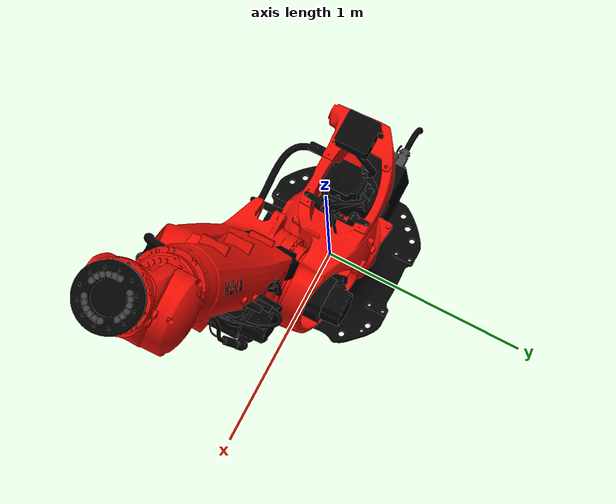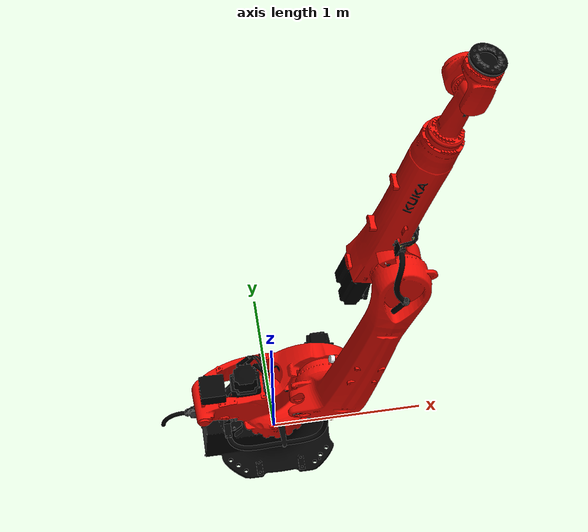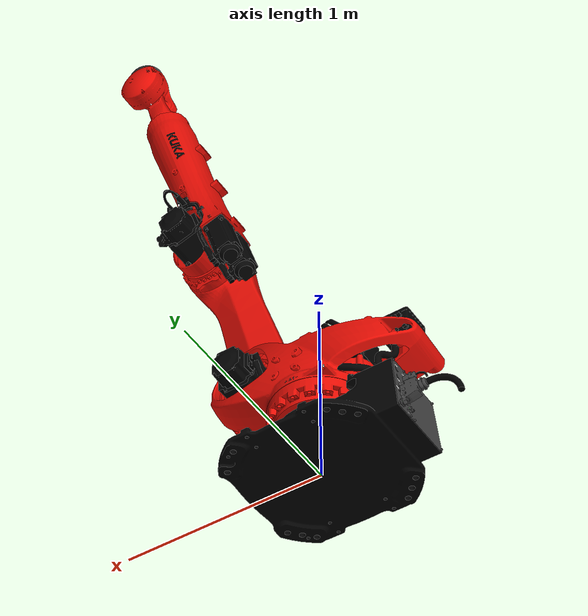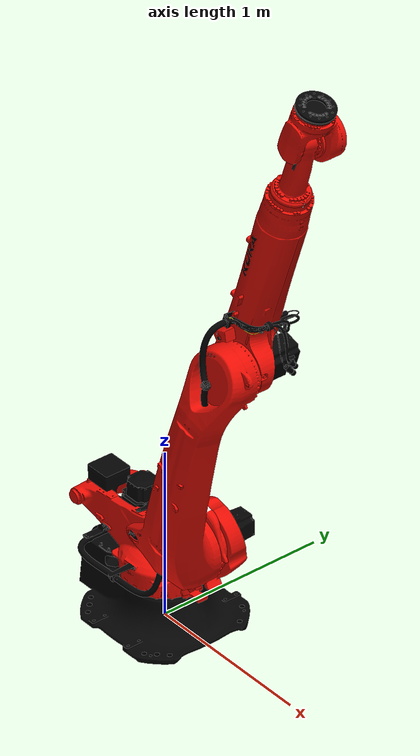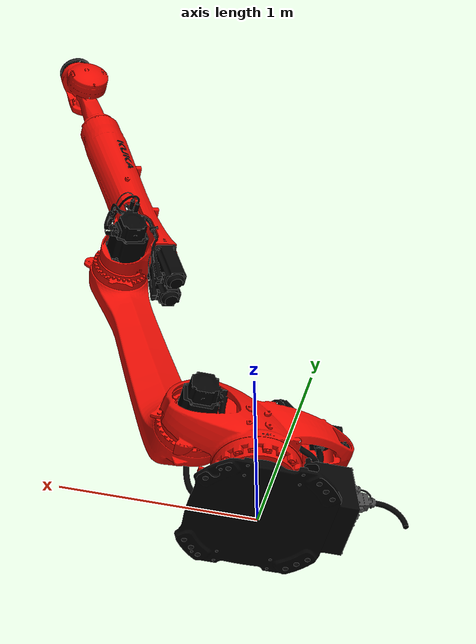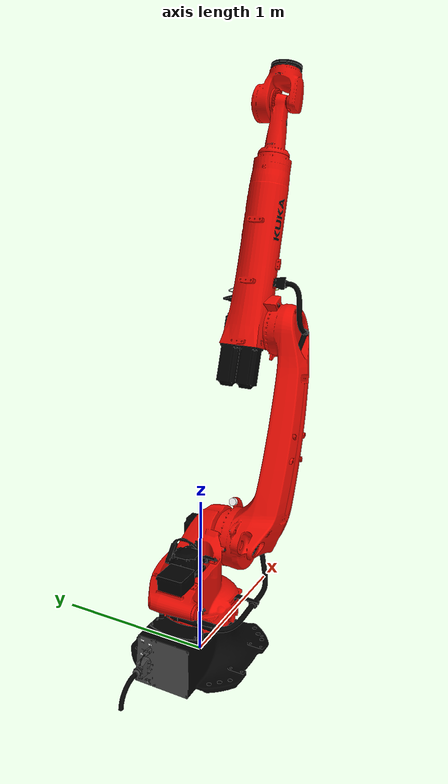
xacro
<?xml version="1.0" encoding="UTF-8"?>
<robot xmlns:xacro="http://www.ros.org/wiki/xacro" name="kr210_r3100_2">
  <!-- Import urdf files  -->
  <xacro:include filename="$(find kuka_quantec_support)/urdf/kr210_r3100_2_macro.xacro"/>
  <xacro:include filename="$(find kuka_quantec_support)/urdf/kr_quantec_ros2_control_macro.xacro"/>
  <!-- Basic arguments  -->
  <xacro:arg name="prefix" default=""/>
  <xacro:arg name="x" default="0"/>
  <xacro:arg name="y" default="0"/>
  <xacro:arg name="z" default="0"/>
  <xacro:arg name="roll" default="0"/>
  <xacro:arg name="pitch" default="0"/>
  <xacro:arg name="yaw" default="0"/>
  <!-- kroshu-specific arguments -->
  <xacro:arg name="driver_version" default="rsi_only"/>
  <xacro:arg name="mode" default="hardware"/>
  <xacro:arg name="gpio_config" default=""/>
  <xacro:arg name="roundtrip_time" default="0"/>
  <xacro:arg name="client_ip" default="0.0.0.0"/>
  <xacro:arg name="client_port" default="59152"/>
  <xacro:arg name="mxa_client_port" default="1337"/>
  <xacro:arg name="controller_ip" default="0.0.0.0"/>
  <xacro:arg name="verify_robot_model" default="true"/>
  <xacro:arg name="rsi_xml_config_file" default=""/>
  <xacro:kuka_quantec_ros2_control name="$(arg prefix)kr210_r3100_2" driver_version="$(arg driver_version)" client_ip="$(arg client_ip)" client_port="$(arg client_port)" mxa_client_port="$(arg mxa_client_port)" controller_ip="$(arg controller_ip)" prefix="$(arg prefix)" mode="$(arg mode)" gpio_config="$(arg gpio_config)" roundtrip_time="$(arg roundtrip_time)" verify_robot_model="$(arg verify_robot_model)" rsi_xml_config_file="$(arg rsi_xml_config_file)">
    <ext_axes_ros2_control_joints/>
  </xacro:kuka_quantec_ros2_control>
  <!-- world link -->
  <link name="world"/>
  <!-- robot links, joints -->
  <xacro:kuka_kr210_r3100_2_robot prefix="$(arg prefix)" package_name="kuka_quantec_support"/>
  <!-- default world - base_link joint -->
  <joint name="$(arg prefix)world-base_link" type="fixed">
    <parent link="world"/>
    <child link="$(arg prefix)base_link"/>
    <origin xyz="$(arg x) $(arg y) $(arg z)" rpy="$(arg roll) $(arg pitch) $(arg yaw)"/>
  </joint>
</robot>

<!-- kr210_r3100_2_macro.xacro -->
<robot xmlns:xacro="http://www.ros.org/wiki/xacro" name="kr210_r3100_2">
  <xacro:macro name="kuka_kr210_r3100_2_robot" params="prefix package_name">
    <link name="${prefix}base"/>
    <link name="${prefix}base_link">
      <collision>
        <geometry>
          <mesh filename="package://${package_name}/meshes/kr210_r3100_2/collision/base_link.stl"/>
        </geometry>
        <origin rpy="0.0 0.0 0.0" xyz="0.0 0.0 0.0"/>
      </collision>
      <inertial>
        <inertia ixx="12.8308803908269" ixy="0.0" ixz="0.0" iyy="9.01196989503174" iyz="0.0" izz="14.2958860155811"/>
        <mass value="2.2596E2"/>
        <origin rpy="-0.050860131411839364 -0.0019883389878402632 1.5231487443995257" xyz="-0.0594893335103558 0.0021559506107275703 0.20325069304301702"/>
      </inertial>
      <visual>
        <geometry>
          <mesh filename="package://${package_name}/meshes/kr210_r3100_2/visual/base_link.dae"/>
        </geometry>
        <origin rpy="0.0 0.0 0.0" xyz="0.0 0.0 0.0"/>
      </visual>
    </link>
    <link name="${prefix}flange"/>
    <link name="${prefix}link_1">
      <collision>
        <geometry>
          <mesh filename="package://${package_name}/meshes/kr210_r3100_2/collision/link_1.stl"/>
        </geometry>
        <origin rpy="-3.141592653589793 0.0 -0.0" xyz="0.0 -3.742520618194312e-17 0.30560000000000004"/>
      </collision>
      <inertial>
        <inertia ixx="31.7863155713632" ixy="0.0" ixz="0.0" iyy="13.3310318632879" iyz="0.0" izz="34.1806723147254"/>
        <mass value="367.37"/>
        <origin rpy="-0.351197441830708 -1.2748494702774995 -1.4514723788195059" xyz="0.0282630046002668 0.011134569507580901 -0.235336739526907"/>
      </inertial>
      <visual>
        <geometry>
          <mesh filename="package://${package_name}/meshes/kr210_r3100_2/visual/link_1.dae"/>
        </geometry>
        <origin rpy="-3.141592653589793 0.0 -0.0" xyz="0.0 -3.742520618194312e-17 0.30560000000000004"/>
      </visual>
    </link>
    <link name="${prefix}link_2">
      <collision>
        <geometry>
          <mesh filename="package://${package_name}/meshes/kr210_r3100_2/collision/link_2.stl"/>
        </geometry>
        <origin rpy="1.5707963267948968 -0.0 1.5707963267948966" xyz="-0.645 -0.32999999999999996 0.07200000000000008"/>
      </collision>
      <inertial>
        <inertia ixx="6.11156632969732" ixy="0.0" ixz="0.0" iyy="82.7509302435823" iyz="0.0" izz="83.2585967164398"/>
        <mass value="250.56"/>
        <origin rpy="0.5376277345260776 0.09067448308201613 0.007191247120022789" xyz="0.577871168582376 -0.0013846982758620701 -0.125571679438059"/>
      </inertial>
      <visual>
        <geometry>
          <mesh filename="package://${package_name}/meshes/kr210_r3100_2/visual/link_2.dae"/>
        </geometry>
        <origin rpy="1.5707963267948968 -0.0 1.5707963267948966" xyz="-0.645 -0.32999999999999996 0.07200000000000008"/>
      </visual>
    </link>
    <link name="${prefix}link_3">
      <collision>
        <geometry>
          <mesh filename="package://${package_name}/meshes/kr210_r3100_2/collision/link_3.stl"/>
        </geometry>
        <origin rpy="1.5707963267948968 -0.0 -0.0" xyz="-0.33000000000000007 1.995 0.17500000000000007"/>
      </collision>
      <inertial>
        <inertia ixx="3.682159161562" ixy="0.0" ixz="0.0" iyy="33.5342001702104" iyz="0.0" izz="34.5572935050498"/>
        <mass value="206.53"/>
        <origin rpy="2.1573989163353855 -0.055914615134042056 -0.05176090067673532" xyz="0.245752626737036 -0.0785722655304314 0.139793974725222"/>
      </inertial>
      <visual>
        <geometry>
          <mesh filename="package://${package_name}/meshes/kr210_r3100_2/visual/link_3.dae"/>
        </geometry>
        <origin rpy="1.5707963267948968 -0.0 -0.0" xyz="-0.33000000000000007 1.995 0.17500000000000007"/>
      </visual>
    </link>
    <link name="${prefix}link_4">
      <collision>
        <geometry>
          <mesh filename="package://${package_name}/meshes/kr210_r3100_2/collision/link_4.stl"/>
        </geometry>
        <origin rpy="1.8369701987210297e-16 1.5707963267948966 0.0" xyz="-2.11 2.0519898299681579e-19 1.3579999999999999"/>
      </collision>
      <inertial>
        <inertia ixx="0.201148018312786" ixy="0.0" ixz="0.0" iyy="1.61560245160953" iyz="0.0" izz="1.64041744739939"/>
        <mass value="47.942845677"/>
        <origin rpy="1.570992251106443 -1.3912820307912872 -1.5710550346492322" xyz="-8.827699851665029e-06 0.030038038468557102 -0.220350148820224"/>
      </inertial>
      <visual>
        <geometry>
          <mesh filename="package://${package_name}/meshes/kr210_r3100_2/visual/link_4.dae"/>
        </geometry>
        <origin rpy="1.8369701987210297e-16 1.5707963267948966 0.0" xyz="-2.11 2.0519898299681579e-19 1.3579999999999999"/>
      </visual>
    </link>
    <link name="${prefix}link_5">
      <collision>
        <geometry>
          <mesh filename="package://${package_name}/meshes/kr210_r3100_2/collision/link_5.stl"/>
        </geometry>
        <origin rpy="1.5707963267948968 -3.749399456654644e-33 -6.123233995736766e-17" xyz="-1.7499999999999998 2.11 -0.10650000000000004"/>
      </collision>
      <inertial>
        <inertia ixx="0.34306033744263" ixy="0.0" ixz="0.0" iyy="0.19689279813435" iyz="0.0" izz="0.347976409834227"/>
        <mass value="23.687644624"/>
        <origin rpy="1.6224506086845345 -0.9319967320369544 -0.06488528019058366" xyz="0.062409087507207 0.00021098685344562402 -0.0640578845918283"/>
      </inertial>
      <visual>
        <geometry>
          <mesh filename="package://${package_name}/meshes/kr210_r3100_2/visual/link_5.dae"/>
        </geometry>
        <origin rpy="1.5707963267948968 -3.749399456654644e-33 -6.123233995736766e-17" xyz="-1.7499999999999998 2.11 -0.10650000000000004"/>
      </visual>
    </link>
    <link name="${prefix}link_6">
      <collision>
        <geometry>
          <mesh filename="package://${package_name}/meshes/kr210_r3100_2/collision/link_6.stl"/>
        </geometry>
        <origin rpy="1.2246467991473532e-16 1.5707963267948966 0.0" xyz="-2.1100000000000003 -1.3562142159748195e-16 1.9195"/>
      </collision>
      <inertial>
        <inertia ixx="0.0369411271609063" ixy="0.0" ixz="0.0" iyy="0.0369531532955219" iyz="0.0" izz="0.0482510013261814"/>
        <mass value="12.245718539"/>
        <origin rpy="0.0001075864410516532 -9.812464461473522e-05 -0.03310542818383201" xyz="4.5958226185134805e-06 -5.59089459126197e-06 -0.0254361898182505"/>
      </inertial>
      <visual>
        <geometry>
          <mesh filename="package://${package_name}/meshes/kr210_r3100_2/visual/link_6.dae"/>
        </geometry>
        <origin rpy="1.2246467991473532e-16 1.5707963267948966 0.0" xyz="-2.1100000000000003 -1.3562142159748195e-16 1.9195"/>
      </visual>
    </link>
    <link name="${prefix}tool0"/>
    <joint name="${prefix}base_link-base" type="fixed">
      <child link="${prefix}base"/>
      <origin rpy="0.0 0.0 0.0" xyz="0.0 0.0 0.0"/>
      <parent link="${prefix}base_link"/>
    </joint>
    <joint name="${prefix}joint_1" type="revolute">
      <axis xyz="0.0 0.0 1.0"/>
      <child link="${prefix}link_1"/>
      <limit effort="7290.0" lower="-3.2288591161895095" upper="3.2288591161895095" velocity="1.83259571459405"/>
      <origin rpy="3.141592653589793 0.0 0.0" xyz="0.0 0.0 0.30560000000000004"/>
      <parent link="${prefix}base_link"/>
    </joint>
    <joint name="${prefix}joint_2" type="revolute">
      <axis xyz="0.0 0.0 1.0"/>
      <child link="${prefix}link_2"/>
      <limit effort="8910.0" lower="-2.443460952792061" upper="-0.08726646259971647" velocity="1.64060949687467"/>
      <origin rpy="1.5707963267948966 0.0 0.0" xyz="0.33 0.072 -0.3394"/>
      <parent link="${prefix}link_1"/>
    </joint>
    <joint name="${prefix}joint_3" type="revolute">
      <axis xyz="0.0 0.0 1.0"/>
      <child link="${prefix}link_3"/>
      <limit effort="7251.28772144203" lower="-2.0943951023931953" upper="2.9321531433504737" velocity="1.74532925199433"/>
      <origin rpy="0.0 0.0 0.0" xyz="1.35 0.0 -0.103"/>
      <parent link="${prefix}link_2"/>
    </joint>
    <joint name="${prefix}joint_4" type="revolute">
      <axis xyz="0.0 0.0 1.0"/>
      <child link="${prefix}link_4"/>
      <limit effort="2356.12609145432" lower="-6.1086523819801535" upper="6.1086523819801535" velocity="2.37364778271229"/>
      <origin rpy="1.5707963267948966 0.0 -1.5707963267948966" xyz="1.028 -0.115 0.175"/>
      <parent link="${prefix}link_3"/>
    </joint>
    <joint name="${prefix}joint_5" type="revolute">
      <axis xyz="0.0 0.0 1.0"/>
      <child link="${prefix}link_5"/>
      <limit effort="2358.4452762381" lower="-2.138028333693054" upper="2.138028333693054" velocity="2.25147473507268"/>
      <origin rpy="0.0 1.5707963267948966 1.5707963267948966" xyz="0.0 0.1065 -0.392"/>
      <parent link="${prefix}link_4"/>
    </joint>
    <joint name="${prefix}joint_6" type="revolute">
      <axis xyz="0.0 0.0 1.0"/>
      <child link="${prefix}link_6"/>
      <limit effort="1508.75471041994" lower="-6.1086523819801535" upper="6.1086523819801535" velocity="3.59537825910832"/>
      <origin rpy="1.5707963267948966 0.0 -1.5707963267948966" xyz="0.1695 0.0 -0.1065"/>
      <parent link="${prefix}link_5"/>
    </joint>
    <joint name="${prefix}link_6-flange" type="fixed">
      <child link="${prefix}flange"/>
      <origin rpy="0.0 1.5707963267948966 0.0" xyz="0.0 0.0 -0.0705"/>
      <parent link="${prefix}link_6"/>
    </joint>
    <joint name="${prefix}link_6-tool0" type="fixed">
      <child link="${prefix}tool0"/>
      <origin rpy="3.141592653589793 0.0 3.141592653589793" xyz="0.0 0.0 -0.0705"/>
      <parent link="${prefix}link_6"/>
    </joint>
  </xacro:macro>
</robot>
